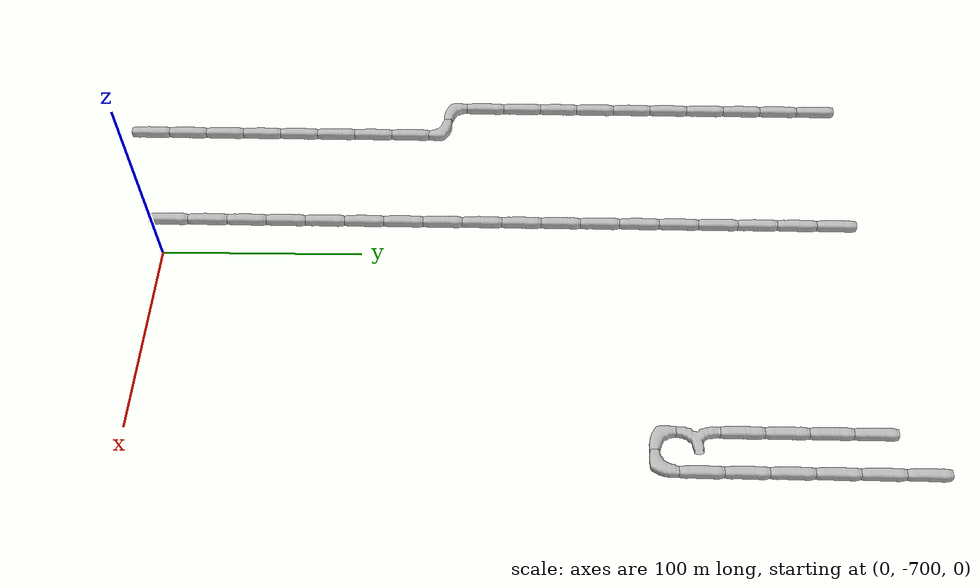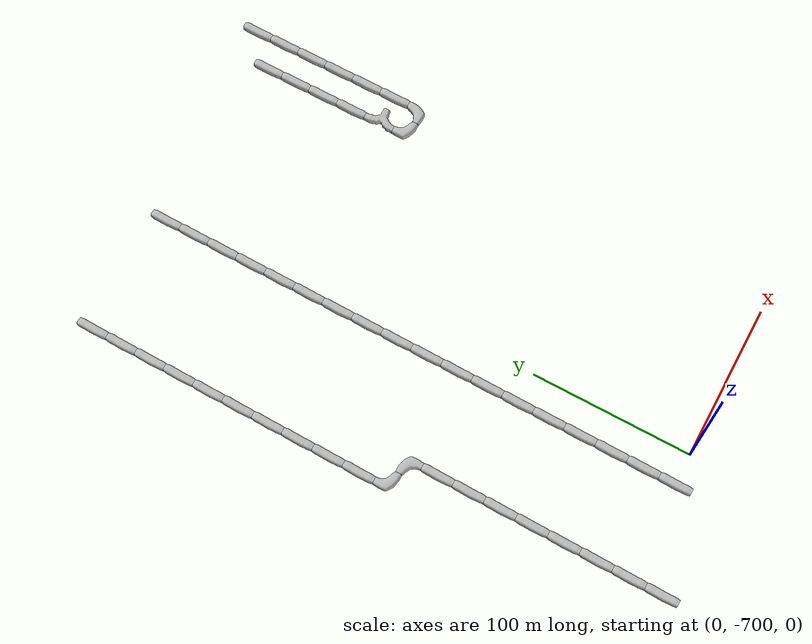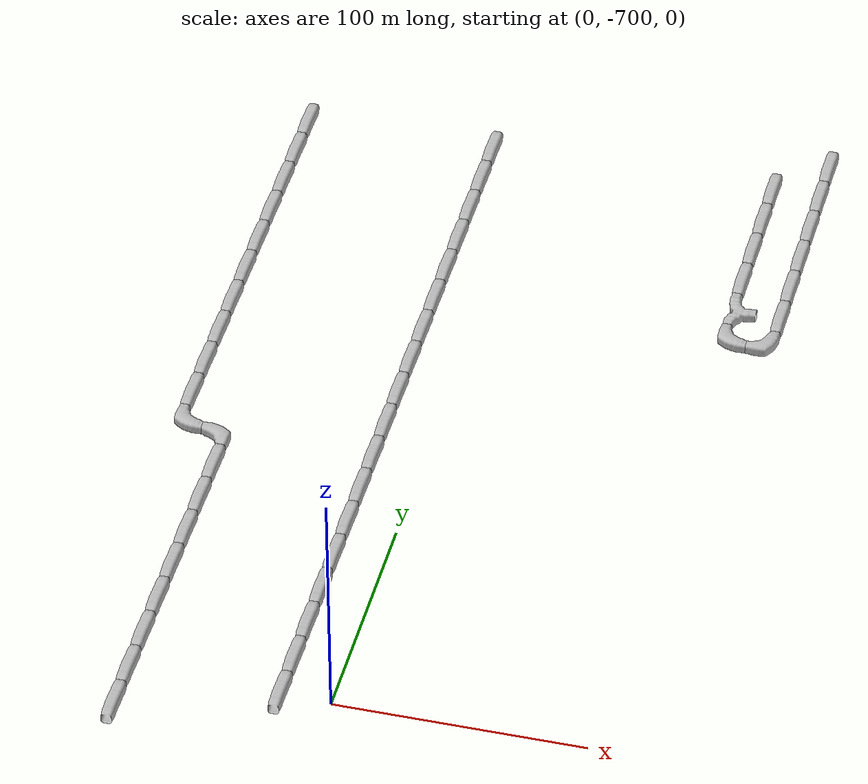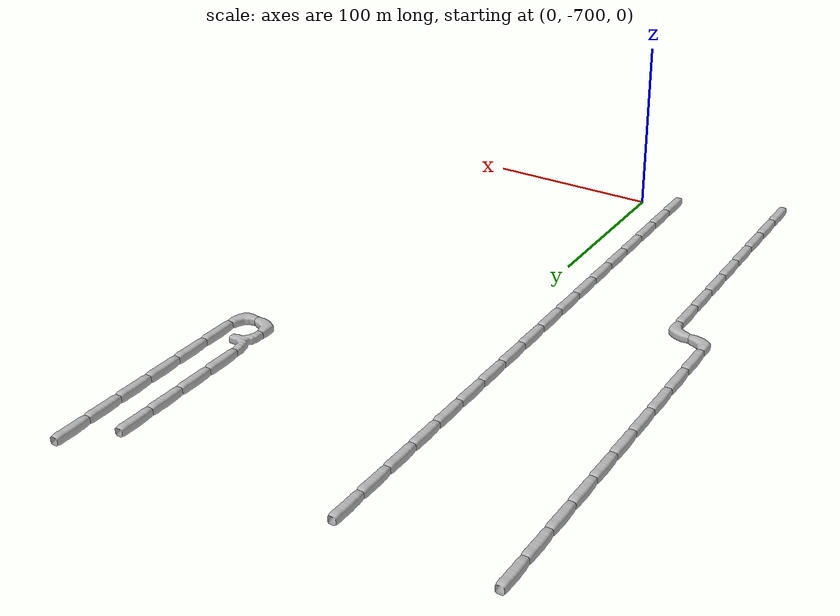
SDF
<sdf version="1.6">
 <world name="cave_16000_0">
  <include>
   <static>true</static>
   <name>cave_6_-17</name>
   <pose>120 -340 0 0 0 0.0</pose>
   <uri>model://cave_straight_20m</uri>
  </include>
  <include>
   <static>true</static>
   <name>cave_6_-18</name>
   <pose>120 -360 0 0 0 0.0</pose>
   <uri>model://cave_straight_20m</uri>
  </include>
  <include>
   <static>true</static>
   <name>cave_6_-19</name>
   <pose>120 -380 0 0 0 0.0</pose>
   <uri>model://cave_straight_20m</uri>
  </include>
  <include>
   <static>true</static>
   <name>cave_6_-20</name>
   <pose>120 -400 0 0 0 0.0</pose>
   <uri>model://cave_straight_20m</uri>
  </include>
  <include>
   <static>true</static>
   <name>cave_6_-21</name>
   <pose>120 -420 0 0 0 0.0</pose>
   <uri>model://cave_straight_20m</uri>
  </include>
  <include>
   <static>true</static>
   <name>cave_6_-22</name>
   <pose>120 -440 0 0 0 0.0</pose>
   <uri>model://cave_straight_20m</uri>
  </include>
  <include>
   <static>true</static>
   <name>cave_6_-23</name>
   <pose>120 -460 0 0 0 1.5707963267948966</pose>
   <uri>model://cave_L_20m</uri>
  </include>
  <include>
   <static>true</static>
   <name>cave_5_-23</name>
   <pose>100 -460 0 0 0 0.0</pose>
   <uri>model://cave_L_20m</uri>
  </include>
  <include>
   <static>true</static>
   <name>cave_5_-22</name>
   <pose>100 -440 0 0 0 -1.5707963267948966</pose>
   <uri>model://cave_3way_20m</uri>
  </include>
  <include>
   <static>true</static>
   <name>cave_5_-21</name>
   <pose>100 -420 0 0 0 0.0</pose>
   <uri>model://cave_straight_20m</uri>
  </include>
  <include>
   <static>true</static>
   <name>cave_5_-20</name>
   <pose>100 -400 0 0 0 0.0</pose>
   <uri>model://cave_straight_20m</uri>
  </include>
  <include>
   <static>true</static>
   <name>cave_5_-19</name>
   <pose>100 -380 0 0 0 0.0</pose>
   <uri>model://cave_straight_20m</uri>
  </include>
  <include>
   <static>true</static>
   <name>cave_5_-18</name>
   <pose>100 -360 0 0 0 0.0</pose>
   <uri>model://cave_straight_20m</uri>
  </include>
  <include>
   <static>true</static>
   <name>cave_-1_-18</name>
   <pose>-20 -360 0 0 0 0.0</pose>
   <uri>model://cave_straight_20m</uri>
  </include>
  <include>
   <static>true</static>
   <name>cave_-1_-19</name>
   <pose>-20 -380 0 0 0 0.0</pose>
   <uri>model://cave_straight_20m</uri>
  </include>
  <include>
   <static>true</static>
   <name>cave_-1_-20</name>
   <pose>-20 -400 0 0 0 0.0</pose>
   <uri>model://cave_straight_20m</uri>
  </include>
  <include>
   <static>true</static>
   <name>cave_-1_-21</name>
   <pose>-20 -420 0 0 0 0.0</pose>
   <uri>model://cave_straight_20m</uri>
  </include>
  <include>
   <static>true</static>
   <name>cave_-1_-22</name>
   <pose>-20 -440 0 0 0 0.0</pose>
   <uri>model://cave_straight_20m</uri>
  </include>
  <include>
   <static>true</static>
   <name>cave_-1_-23</name>
   <pose>-20 -460 0 0 0 0.0</pose>
   <uri>model://cave_straight_20m</uri>
  </include>
  <include>
   <static>true</static>
   <name>cave_-1_-24</name>
   <pose>-20 -480 0 0 0 0.0</pose>
   <uri>model://cave_straight_20m</uri>
  </include>
  <include>
   <static>true</static>
   <name>cave_-1_-25</name>
   <pose>-20 -500 0 0 0 0.0</pose>
   <uri>model://cave_straight_20m</uri>
  </include>
  <include>
   <static>true</static>
   <name>cave_-1_-26</name>
   <pose>-20 -520 0 0 0 0.0</pose>
   <uri>model://cave_straight_20m</uri>
  </include>
  <include>
   <static>true</static>
   <name>cave_-1_-27</name>
   <pose>-20 -540 0 0 0 0.0</pose>
   <uri>model://cave_straight_20m</uri>
  </include>
  <include>
   <static>true</static>
   <name>cave_-1_-28</name>
   <pose>-20 -560 0 0 0 0.0</pose>
   <uri>model://cave_straight_20m</uri>
  </include>
  <include>
   <static>true</static>
   <name>cave_-1_-29</name>
   <pose>-20 -580 0 0 0 0.0</pose>
   <uri>model://cave_straight_20m</uri>
  </include>
  <include>
   <static>true</static>
   <name>cave_-1_-30</name>
   <pose>-20 -600 0 0 0 0.0</pose>
   <uri>model://cave_straight_20m</uri>
  </include>
  <include>
   <static>true</static>
   <name>cave_-1_-31</name>
   <pose>-20 -620 0 0 0 0.0</pose>
   <uri>model://cave_straight_20m</uri>
  </include>
  <include>
   <static>true</static>
   <name>cave_-1_-32</name>
   <pose>-20 -640 0 0 0 0.0</pose>
   <uri>model://cave_straight_20m</uri>
  </include>
  <include>
   <static>true</static>
   <name>cave_-1_-33</name>
   <pose>-20 -660 0 0 0 0.0</pose>
   <uri>model://cave_straight_20m</uri>
  </include>
  <include>
   <static>true</static>
   <name>cave_-1_-34</name>
   <pose>-20 -680 0 0 0 0.0</pose>
   <uri>model://cave_straight_20m</uri>
  </include>
  <include>
   <static>true</static>
   <name>cave_-1_-35</name>
   <pose>-20 -700 0 0 0 0.0</pose>
   <uri>model://cave_straight_20m</uri>
  </include>
  <include>
   <static>true</static>
   <name>cave_-5_-18</name>
   <pose>-100 -360 0 0 0 0.0</pose>
   <uri>model://cave_straight_20m</uri>
  </include>
  <include>
   <static>true</static>
   <name>cave_-5_-19</name>
   <pose>-100 -380 0 0 0 0.0</pose>
   <uri>model://cave_straight_20m</uri>
  </include>
  <include>
   <static>true</static>
   <name>cave_-5_-20</name>
   <pose>-100 -400 0 0 0 0.0</pose>
   <uri>model://cave_straight_20m</uri>
  </include>
  <include>
   <static>true</static>
   <name>cave_-5_-21</name>
   <pose>-100 -420 0 0 0 0.0</pose>
   <uri>model://cave_straight_20m</uri>
  </include>
  <include>
   <static>true</static>
   <name>cave_-5_-22</name>
   <pose>-100 -440 0 0 0 0.0</pose>
   <uri>model://cave_straight_20m</uri>
  </include>
  <include>
   <static>true</static>
   <name>cave_-5_-23</name>
   <pose>-100 -460 0 0 0 0.0</pose>
   <uri>model://cave_straight_20m</uri>
  </include>
  <include>
   <static>true</static>
   <name>cave_-5_-24</name>
   <pose>-100 -480 0 0 0 0.0</pose>
   <uri>model://cave_straight_20m</uri>
  </include>
  <include>
   <static>true</static>
   <name>cave_-5_-25</name>
   <pose>-100 -500 0 0 0 0.0</pose>
   <uri>model://cave_straight_20m</uri>
  </include>
  <include>
   <static>true</static>
   <name>cave_-5_-26</name>
   <pose>-100 -520 0 0 0 0.0</pose>
   <uri>model://cave_straight_20m</uri>
  </include>
  <include>
   <static>true</static>
   <name>cave_-5_-27</name>
   <pose>-100 -540 0 0 0 0.0</pose>
   <uri>model://cave_straight_20m</uri>
  </include>
  <include>
   <static>true</static>
   <name>cave_-5_-28</name>
   <pose>-100 -560 0 0 0 0.0</pose>
   <uri>model://cave_L_20m</uri>
  </include>
  <include>
   <static>true</static>
   <name>cave_-4_-28</name>
   <pose>-80 -560 0 0 0 3.141592653589793</pose>
   <uri>model://cave_L_20m</uri>
  </include>
  <include>
   <static>true</static>
   <name>cave_-4_-29</name>
   <pose>-80 -580 0 0 0 0.0</pose>
   <uri>model://cave_straight_20m</uri>
  </include>
  <include>
   <static>true</static>
   <name>cave_-4_-30</name>
   <pose>-80 -600 0 0 0 0.0</pose>
   <uri>model://cave_straight_20m</uri>
  </include>
  <include>
   <static>true</static>
   <name>cave_-4_-31</name>
   <pose>-80 -620 0 0 0 0.0</pose>
   <uri>model://cave_straight_20m</uri>
  </include>
  <include>
   <static>true</static>
   <name>cave_-4_-32</name>
   <pose>-80 -640 0 0 0 0.0</pose>
   <uri>model://cave_straight_20m</uri>
  </include>
  <include>
   <static>true</static>
   <name>cave_-4_-33</name>
   <pose>-80 -660 0 0 0 0.0</pose>
   <uri>model://cave_straight_20m</uri>
  </include>
  <include>
   <static>true</static>
   <name>cave_-4_-34</name>
   <pose>-80 -680 0 0 0 0.0</pose>
   <uri>model://cave_straight_20m</uri>
  </include>
  <include>
   <static>true</static>
   <name>cave_-4_-35</name>
   <pose>-80 -700 0 0 0 0.0</pose>
   <uri>model://cave_straight_20m</uri>
  </include>
  <include>
   <static>true</static>
   <name>cave_-4_-36</name>
   <pose>-80 -720 0 0 0 0.0</pose>
   <uri>model://cave_straight_20m</uri>
  </include>
 </world>
</sdf>
